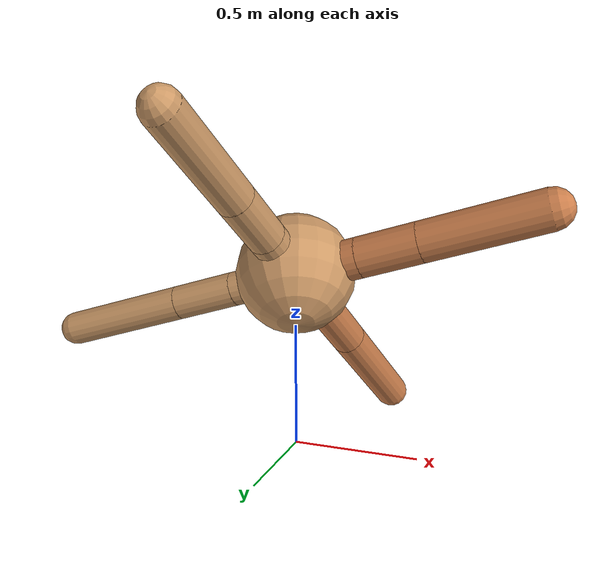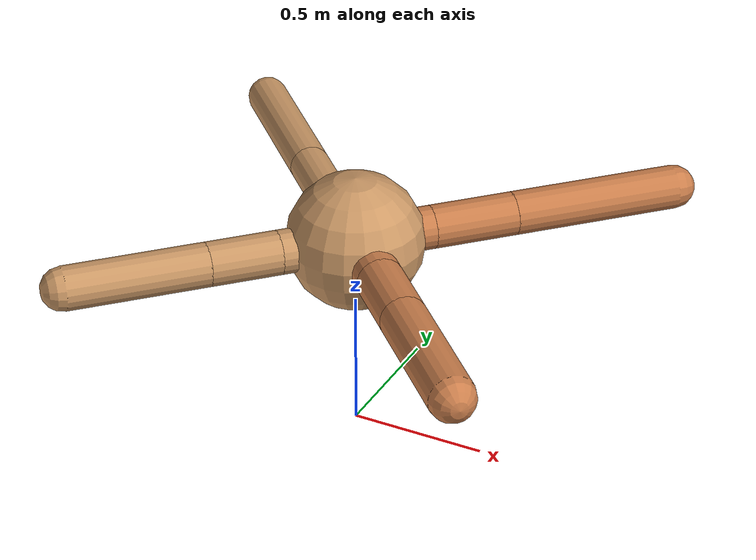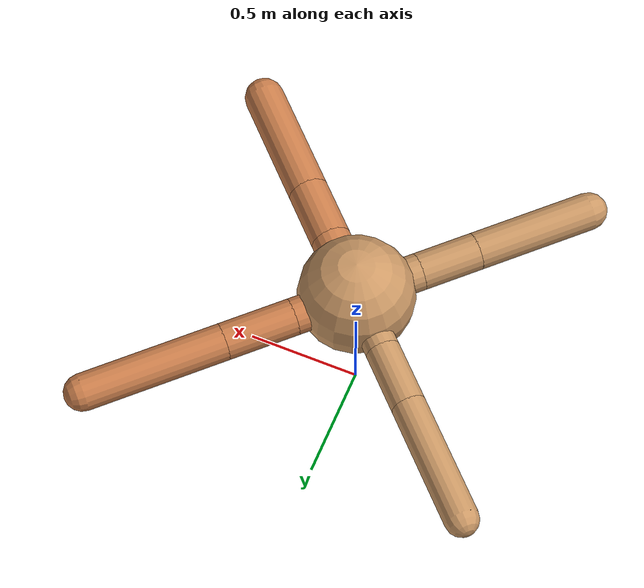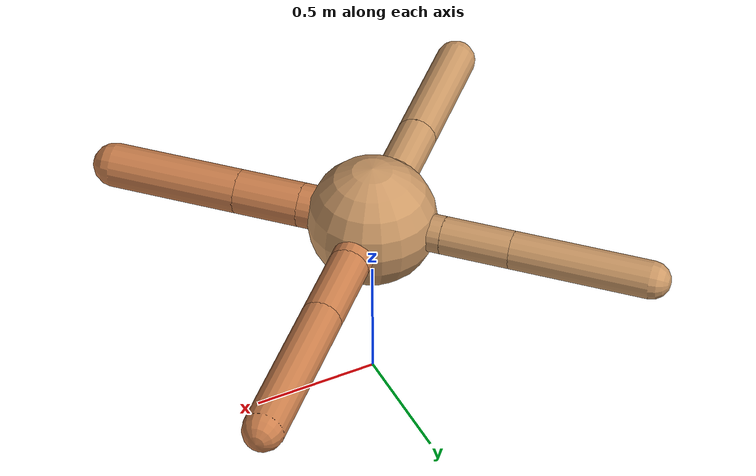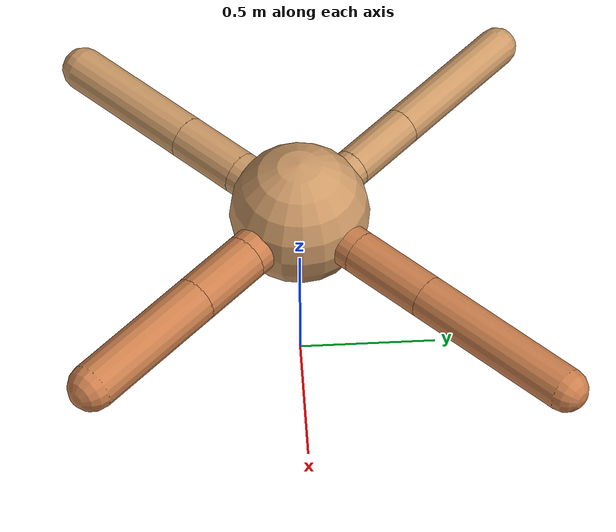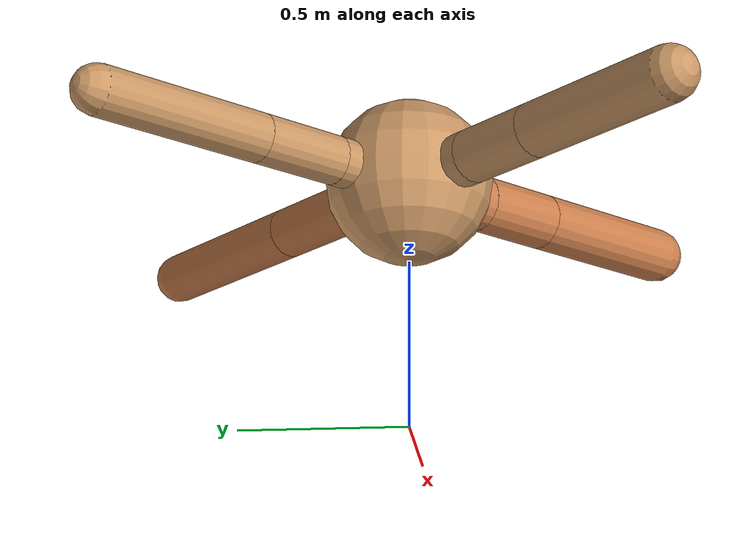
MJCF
<?xml version="1.0" ?>
<mujoco model="ant">

	<compiler angle="degree" coordinate="local" inertiafromgeom="true"/>

	<option integrator="RK4" timestep="0.01"/>

	<custom>

		<numeric data="0.0 0.0 0.55 1.0 0.0 0.0 0.0 0.0 1.0 0.0 -1.0 0.0 -1.0 0.0 1.0" name="init_qpos"/>

	</custom>

	<default>

		<joint armature="1" damping="1" limited="true"/>

		<geom conaffinity="0" condim="3" density="5.0" friction="1.5 0.1 0.1" margin="0.01" rgba="0.8 0.6 0.4 1"/>

	</default>

	<worldbody>

		<body name="torso" pos="0 0 0.75">

			<geom name="torso_geom" pos="0 0 0" size="0.24989754547564472" type="sphere"/>

			<!--joint armature="0" damping="0" limited="false" margin="0.01" name="root" pos="0 0 0" type="free"/-->

			<body name="front_left_leg" pos="0 0 0">

				<geom fromto="0 0 0 0.2 0.2 0" name="aux_1_geom" size="0.07877442674590895" type="capsule" rgba=".8 .5 .3 1"/>

				<body name="aux_1" pos="0.2 0.2 0">

					<joint axis="0 0 1" name="hip_1" pos="0.0 0.0 0.0" range="-40 40" type="hinge"/>

					<geom fromto="0 0 0 0.2172426067617016 0.2172426067617016 0" name="left_leg_geom" size="0.07877442674590895" type="capsule" rgba=".8 .5 .3 1"/>

					<body pos="0.2172426067617016 0.2172426067617016 0" name="front_left_foot">

						<joint axis="-1 1 0" name="ankle_1" pos="0.0 0.0 0.0" range="30 100" type="hinge"/>

						<geom fromto="0 0 0 0.4344852135234032 0.4344852135234032 0" name="left_ankle_geom" size="0.07877442674590895" type="capsule" rgba=".8 .5 .3 1"/>

					</body>

				</body>

			</body>

			<body name="front_right_leg" pos="0 0 0">

				<geom fromto="0 0 0 -0.2 0.2 0" name="aux_2_geom" size="0.07287360793321829" type="capsule"/>

				<body name="aux_2" pos="-0.2 0.2 0">

					<joint axis="0 0 1" name="hip_2" pos="0.0 0.0 0.0" range="-40 40" type="hinge"/>

					<geom fromto="0 0 0 -0.1910819994971626 0.1910819994971626 0" name="right_leg_geom" size="0.07287360793321829" type="capsule"/>

					<body pos="-0.1910819994971626 0.1910819994971626 0" name="front_right_foot">

						<joint axis="1 1 0" name="ankle_2" pos="0.0 0.0 0.0" range="-100 -30" type="hinge"/>

						<geom fromto="0 0 0 -0.3821639989943252 0.3821639989943252 0" name="right_ankle_geom" size="0.07287360793321829" type="capsule"/>

					</body>

				</body>

			</body>

			<body name="left_back_leg" pos="0 0 0">

				<geom fromto="0 0 0 -0.2 -0.2 0" name="aux_3_geom" size="0.08018818180015706" type="capsule"/>

				<body name="aux_3" pos="-0.2 -0.2 0">

					<joint axis="0 0 1" name="hip_3" pos="0.0 0.0 0.0" range="-40 40" type="hinge"/>

					<geom fromto="0 0 0 -0.18370090236757877 -0.18370090236757877 0" name="back_leg_geom" size="0.08018818180015706" type="capsule"/>

					<body pos="-0.18370090236757877 -0.18370090236757877 0" name="left_back_foot">

						<joint axis="-1 1 0" name="ankle_3" pos="0.0 0.0 0.0" range="-100 -30" type="hinge"/>

						<geom fromto="0 0 0 -0.36740180473515754 -0.36740180473515754 0" name="third_ankle_geom" size="0.08018818180015706" type="capsule"/>

					</body>

				</body>

			</body>

			<body name="right_back_leg" pos="0 0 0">

				<geom fromto="0 0 0 0.2 -0.2 0" name="aux_4_geom" size="0.08598440015861343" type="capsule" rgba=".8 .5 .3 1"/>

				<body name="aux_4" pos="0.2 -0.2 0">

					<joint axis="0 0 1" name="hip_4" pos="0.0 0.0 0.0" range="-40 40" type="hinge"/>

					<geom fromto="0 0 0 0.1815936369559762 -0.1815936369559762 0" name="rightback_leg_geom" size="0.08598440015861343" type="capsule" rgba=".8 .5 .3 1"/>

					<body pos="0.1815936369559762 -0.1815936369559762 0" name="right_back_foot">

						<joint axis="1 1 0" name="ankle_4" pos="0.0 0.0 0.0" range="30 100" type="hinge"/>

						<geom fromto="0 0 0 0.3631872739119524 -0.3631872739119524 0" name="fourth_ankle_geom" size="0.08598440015861343" type="capsule" rgba=".8 .5 .3 1"/>

					</body>

				</body>

			</body>

		</body>

	</worldbody>

	<actuator>

		<motor ctrllimited="true" ctrlrange="-1.0 1.0" joint="hip_4" gear="150"/>

		<motor ctrllimited="true" ctrlrange="-1.0 1.0" joint="ankle_4" gear="150"/>

		<motor ctrllimited="true" ctrlrange="-1.0 1.0" joint="hip_1" gear="150"/>

		<motor ctrllimited="true" ctrlrange="-1.0 1.0" joint="ankle_1" gear="150"/>

		<motor ctrllimited="true" ctrlrange="-1.0 1.0" joint="hip_2" gear="150"/>

		<motor ctrllimited="true" ctrlrange="-1.0 1.0" joint="ankle_2" gear="150"/>

		<motor ctrllimited="true" ctrlrange="-1.0 1.0" joint="hip_3" gear="150"/>

		<motor ctrllimited="true" ctrlrange="-1.0 1.0" joint="ankle_3" gear="150"/>

	</actuator>

</mujoco>
